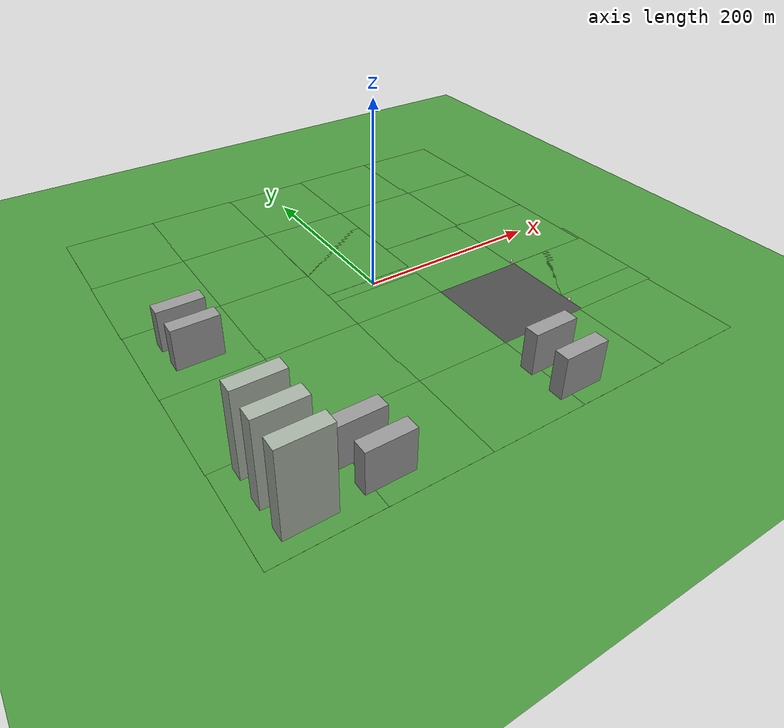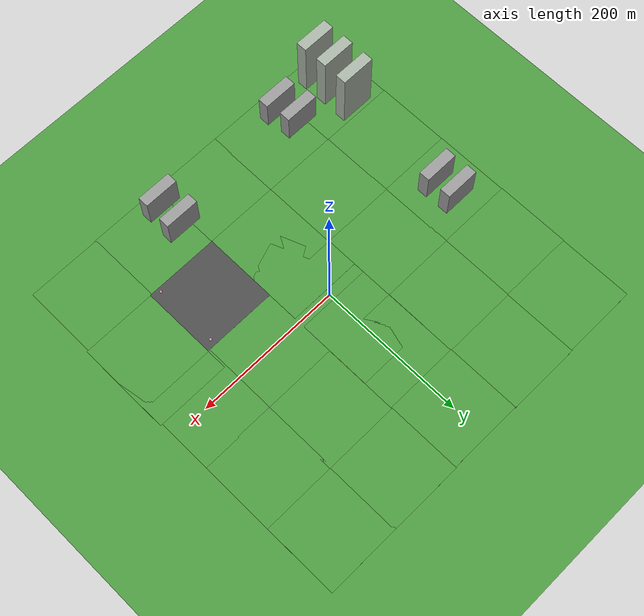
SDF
<sdf version="1.6">
 <world name="default">
  <light name="sun" type="directional">
   <pose>0 0 10 0 -0 0</pose>
   <diffuse>0.8 0.8 0.8 1</diffuse>
   <specular>0.2 0.2 0.2 1</specular>
   <attenuation>
    <range>1000</range>
    <constant>0.9</constant>
    <linear>0.01</linear>
    <quadratic>0.001</quadratic>
   </attenuation>
   <direction>-0.5 0.1 -0.9</direction>
  </light>
  <gravity>0 0 -9.8</gravity>
  <magnetic_field>6e-06 2.3e-05 -4.2e-05</magnetic_field>
  <atmosphere type="adiabatic"/>
  <physics name="default_physics" default="0" type="ode">
   <max_step_size>0.001</max_step_size>
   <real_time_factor>1</real_time_factor>
   <real_time_update_rate>1000</real_time_update_rate>
  </physics>
  <scene><ambient>0.4 0.4 0.4 1</ambient><background>0.7 0.7 0.7 1</background><shadows>1</shadows></scene>
  <spherical_coordinates>
   <surface_model>EARTH_WGS84</surface_model>
   <latitude_deg>0</latitude_deg>
   <longitude_deg>0</longitude_deg>
   <elevation>0</elevation>
   <heading_deg>0</heading_deg>
  </spherical_coordinates>
  <model name="ground_plane_0">
   <static>1</static>
   <link name="link">
    <collision name="collision">
     <geometry><plane><normal>0 0 1</normal><size>100 100</size></plane></geometry>
     <surface>
      <contact><collide_bitmask>65535</collide_bitmask></contact>
      <friction><ode><mu>100</mu><mu2>50</mu2></ode></friction>
     </surface>
    </collision>
    <visual name="visual">
     <cast_shadows>0</cast_shadows>
     <geometry><plane><normal>0 0 1</normal><size>100 100</size></plane></geometry>
     <material>
      <script><uri>file://media/materials/scripts/gazebo.material</uri><name>Gazebo/Grass</name></script>
     </material>
    </visual>
   </link>
   <pose>99.6791 0.203178 0 0 -0 0</pose>
  </model>
  <model name="ground_plane_1">
   <static>1</static>
   <link name="link">
    <collision name="collision">
     <geometry><plane><normal>0 0 1</normal><size>100 100</size></plane></geometry>
     <surface>
      <contact><collide_bitmask>65535</collide_bitmask></contact>
      <friction><ode><mu>100</mu><mu2>50</mu2></ode></friction>
     </surface>
    </collision>
    <visual name="visual">
     <cast_shadows>0</cast_shadows>
     <geometry><plane><normal>0 0 1</normal><size>100 100</size></plane></geometry>
     <material>
      <script><uri>file://media/materials/scripts/gazebo.material</uri><name>Gazebo/Grass</name></script>
     </material>
    </visual>
   </link>
   <pose>-0.061264 -99.9108 0 0 -0 0</pose>
  </model>
  <model name="ground_plane_3">
   <static>1</static>
   <link name="link">
    <collision name="collision">
     <geometry><plane><normal>0 0 1</normal><size>100 100</size></plane></geometry>
     <surface>
      <contact><collide_bitmask>65535</collide_bitmask></contact>
      <friction><ode><mu>100</mu><mu2>50</mu2></ode></friction>
     </surface>
    </collision>
    <visual name="visual">
     <cast_shadows>0</cast_shadows>
     <geometry><plane><normal>0 0 1</normal><size>100 100</size></plane></geometry>
     <material>
      <script><uri>file://media/materials/scripts/gazebo.material</uri><name>Gazebo/Grass</name></script>
     </material>
    </visual>
   </link>
   <pose>-98.8762 -99.6909 0 0 -0 0</pose>
  </model>
  <model name="ground_plane_4">
   <static>1</static>
   <link name="link">
    <collision name="collision">
     <geometry><plane><normal>0 0 1</normal><size>100 100</size></plane></geometry>
     <surface>
      <contact><collide_bitmask>65535</collide_bitmask></contact>
      <friction><ode><mu>100</mu><mu2>50</mu2></ode></friction>
     </surface>
    </collision>
    <visual name="visual">
     <cast_shadows>0</cast_shadows>
     <geometry><plane><normal>0 0 1</normal><size>100 100</size></plane></geometry>
     <material>
      <script><uri>file://media/materials/scripts/gazebo.material</uri><name>Gazebo/Grass</name></script>
     </material>
    </visual>
   </link>
   <pose>-99.6799 -0.052707 0 0 -0 0</pose>
  </model>
  <model name="ground_plane_5">
   <static>1</static>
   <link name="link">
    <collision name="collision">
     <geometry><plane><normal>0 0 1</normal><size>100 100</size></plane></geometry>
     <surface>
      <contact><collide_bitmask>65535</collide_bitmask></contact>
      <friction><ode><mu>100</mu><mu2>50</mu2></ode></friction>
     </surface>
    </collision>
    <visual name="visual">
     <cast_shadows>0</cast_shadows>
     <geometry><plane><normal>0 0 1</normal><size>100 100</size></plane></geometry>
     <material>
      <script><uri>file://media/materials/scripts/gazebo.material</uri><name>Gazebo/Grass</name></script>
     </material>
    </visual>
   </link>
   <pose>-99.3189 99.7356 0 0 -0 0</pose>
  </model>
  <model name="ground_plane_6">
   <static>1</static>
   <link name="link">
    <collision name="collision">
     <geometry><plane><normal>0 0 1</normal><size>100 100</size></plane></geometry>
     <surface>
      <contact><collide_bitmask>65535</collide_bitmask></contact>
      <friction><ode><mu>100</mu><mu2>50</mu2></ode></friction>
     </surface>
    </collision>
    <visual name="visual">
     <cast_shadows>0</cast_shadows>
     <geometry><plane><normal>0 0 1</normal><size>100 100</size></plane></geometry>
     <material>
      <script><uri>file://media/materials/scripts/gazebo.material</uri><name>Gazebo/Grass</name></script>
     </material>
    </visual>
   </link>
   <pose>0.227483 99.6639 0 0 -0 0</pose>
  </model>
  <model name="ground_plane_7">
   <static>1</static>
   <link name="link">
    <collision name="collision">
     <geometry><plane><normal>0 0 1</normal><size>100 100</size></plane></geometry>
     <surface>
      <contact><collide_bitmask>65535</collide_bitmask></contact>
      <friction><ode><mu>100</mu><mu2>50</mu2></ode></friction>
     </surface>
    </collision>
    <visual name="visual">
     <cast_shadows>0</cast_shadows>
     <geometry><plane><normal>0 0 1</normal><size>100 100</size></plane></geometry>
     <material>
      <script><uri>file://media/materials/scripts/gazebo.material</uri><name>Gazebo/Grass</name></script>
     </material>
    </visual>
   </link>
   <pose>100.101 100.043 0 0 -0 0</pose>
  </model>
  <model name="ground_plane">
   <static>1</static>
   <link name="link">
    <collision name="collision">
     <geometry><plane><normal>0 0 1</normal><size>100 100</size></plane></geometry>
     <surface>
      <contact><collide_bitmask>65535</collide_bitmask></contact>
      <friction><ode><mu>100</mu><mu2>50</mu2></ode></friction>
     </surface>
    </collision>
    <visual name="visual">
     <cast_shadows>0</cast_shadows>
     <geometry><plane><normal>0 0 1</normal><size>15 100</size></plane></geometry>
     <material>
      <script><uri>file://media/materials/scripts/gazebo.material</uri><name>Gazebo/Road</name></script>
     </material>
    </visual>
   </link>
   <pose>0 0 0 0 0 -1.57637</pose>
  </model>
  <model name="ground_plane_8">
   <static>1</static>
   <link name="link">
    <collision name="collision">
     <geometry><plane><normal>0 0 1</normal><size>100 100</size></plane></geometry>
     <surface>
      <contact><collide_bitmask>65535</collide_bitmask></contact>
      <friction><ode><mu>100</mu><mu2>50</mu2></ode></friction>
     </surface>
    </collision>
    <visual name="visual">
     <cast_shadows>0</cast_shadows>
     <geometry><plane><normal>0 0 1</normal><size>100 100</size></plane></geometry>
     <material>
      <script><uri>file://media/materials/scripts/gazebo.material</uri><name>Gazebo/Grass</name></script>
     </material>
    </visual>
   </link>
   <pose>0.044486 -57.1494 0 0 -0 0</pose>
  </model>
  <model name="ground_plane_9">
   <static>1</static>
   <link name="link">
    <collision name="collision">
     <geometry><plane><normal>0 0 1</normal><size>100 100</size></plane></geometry>
     <surface>
      <contact><collide_bitmask>65535</collide_bitmask></contact>
      <friction><ode><mu>100</mu><mu2>50</mu2></ode></friction>
     </surface>
    </collision>
    <visual name="visual">
     <cast_shadows>0</cast_shadows>
     <geometry><plane><normal>0 0 1</normal><size>100 100</size></plane></geometry>
     <material>
      <script><uri>file://media/materials/scripts/gazebo.material</uri><name>Gazebo/Grass</name></script>
     </material>
    </visual>
   </link>
   <pose>-0.105901 57.3308 0 0 -0 0</pose>
  </model>
  <model name="ground_plane_10">
   <static>1</static>
   <link name="link">
    <collision name="collision">
     <geometry><plane><normal>0 0 1</normal><size>100 100</size></plane></geometry>
     <surface>
      <contact><collide_bitmask>65535</collide_bitmask></contact>
      <friction><ode><mu>100</mu><mu2>50</mu2></ode></friction>
     </surface>
    </collision>
    <visual name="visual">
     <cast_shadows>0</cast_shadows>
     <geometry><plane><normal>0 0 1</normal><size>100 100</size></plane></geometry>
     <material>
      <script><uri>file://media/materials/scripts/gazebo.material</uri><name>Gazebo/Grass</name></script>
     </material>
    </visual>
   </link>
   <pose>-99.459 199.72 0 0 -0 0</pose>
  </model>
  <model name="ground_plane_11">
   <static>1</static>
   <link name="link">
    <collision name="collision">
     <geometry><plane><normal>0 0 1</normal><size>100 100</size></plane></geometry>
     <surface>
      <contact><collide_bitmask>65535</collide_bitmask></contact>
      <friction><ode><mu>100</mu><mu2>50</mu2></ode></friction>
     </surface>
    </collision>
    <visual name="visual">
     <cast_shadows>0</cast_shadows>
     <geometry><plane><normal>0 0 1</normal><size>100 100</size></plane></geometry>
     <material>
      <script><uri>file://media/materials/scripts/gazebo.material</uri><name>Gazebo/Grass</name></script>
     </material>
    </visual>
   </link>
   <pose>-199.25 99.2555 0 0 -0 0</pose>
  </model>
  <model name="ground_plane_12">
   <static>1</static>
   <link name="link">
    <collision name="collision">
     <geometry><plane><normal>0 0 1</normal><size>100 100</size></plane></geometry>
     <surface>
      <contact><collide_bitmask>65535</collide_bitmask></contact>
      <friction><ode><mu>100</mu><mu2>50</mu2></ode></friction>
     </surface>
    </collision>
    <visual name="visual">
     <cast_shadows>0</cast_shadows>
     <geometry><plane><normal>0 0 1</normal><size>100 100</size></plane></geometry>
     <material>
      <script><uri>file://media/materials/scripts/gazebo.material</uri><name>Gazebo/Grass</name></script>
     </material>
    </visual>
   </link>
   <pose>-198.694 198.835 0 0 -0 0</pose>
  </model>
  <model name="ground_plane_13">
   <static>1</static>
   <link name="link">
    <collision name="collision">
     <geometry><plane><normal>0 0 1</normal><size>100 100</size></plane></geometry>
     <surface>
      <contact><collide_bitmask>65535</collide_bitmask></contact>
      <friction><ode><mu>100</mu><mu2>50</mu2></ode></friction>
     </surface>
    </collision>
    <visual name="visual">
     <cast_shadows>0</cast_shadows>
     <geometry><plane><normal>0 0 1</normal><size>100 100</size></plane></geometry>
     <material>
      <script><uri>file://media/materials/scripts/gazebo.material</uri><name>Gazebo/Grass</name></script>
     </material>
    </visual>
   </link>
   <pose>-198.64 -0.563791 0 0 -0 0</pose>
  </model>
  <model name="ground_plane_15">
   <static>1</static>
   <link name="link">
    <collision name="collision">
     <geometry><plane><normal>0 0 1</normal><size>100 100</size></plane></geometry>
     <surface>
      <contact><collide_bitmask>65535</collide_bitmask></contact>
      <friction><ode><mu>100</mu><mu2>50</mu2></ode></friction>
     </surface>
    </collision>
    <visual name="visual">
     <cast_shadows>0</cast_shadows>
     <geometry><plane><normal>0 0 1</normal><size>100 100</size></plane></geometry>
     <material>
      <script><uri>file://media/materials/scripts/gazebo.material</uri><name>Gazebo/Grass</name></script>
     </material>
    </visual>
   </link>
   <pose>99.2331 199.94 0 0 -0 0</pose>
  </model>
  <model name="ground_plane_16">
   <static>1</static>
   <link name="link">
    <collision name="collision">
     <geometry><plane><normal>0 0 1</normal><size>100 100</size></plane></geometry>
     <surface>
      <contact><collide_bitmask>65535</collide_bitmask></contact>
      <friction><ode><mu>100</mu><mu2>50</mu2></ode></friction>
     </surface>
    </collision>
    <visual name="visual">
     <cast_shadows>0</cast_shadows>
     <geometry><plane><normal>0 0 1</normal><size>100 100</size></plane></geometry>
     <material>
      <script><uri>file://media/materials/scripts/gazebo.material</uri><name>Gazebo/Grass</name></script>
     </material>
    </visual>
   </link>
   <pose>197.197 199.742 0 0 -0 0</pose>
  </model>
  <model name="ground_plane_17">
   <static>1</static>
   <link name="link">
    <collision name="collision">
     <geometry><plane><normal>0 0 1</normal><size>100 100</size></plane></geometry>
     <surface>
      <contact><collide_bitmask>65535</collide_bitmask></contact>
      <friction><ode><mu>100</mu><mu2>50</mu2></ode></friction>
     </surface>
    </collision>
    <visual name="visual">
     <cast_shadows>0</cast_shadows>
     <geometry><plane><normal>0 0 1</normal><size>100 100</size></plane></geometry>
     <material>
      <script><uri>file://media/materials/scripts/gazebo.material</uri><name>Gazebo/Grass</name></script>
     </material>
    </visual>
   </link>
   <pose>197.281 99.79 0 0 -0 0</pose>
  </model>
  <model name="ground_plane_18">
   <static>1</static>
   <link name="link">
    <collision name="collision">
     <geometry><plane><normal>0 0 1</normal><size>100 100</size></plane></geometry>
     <surface>
      <contact><collide_bitmask>65535</collide_bitmask></contact>
      <friction><ode><mu>100</mu><mu2>50</mu2></ode></friction>
     </surface>
    </collision>
    <visual name="visual">
     <cast_shadows>0</cast_shadows>
     <geometry><plane><normal>0 0 1</normal><size>100 100</size></plane></geometry>
     <material>
      <script><uri>file://media/materials/scripts/gazebo.material</uri><name>Gazebo/Grass</name></script>
     </material>
    </visual>
   </link>
   <pose>197.15 1.20188 0 0 -0 0</pose>
  </model>
  <model name="ground_plane_20">
   <static>1</static>
   <link name="link">
    <collision name="collision">
     <geometry><plane><normal>0 0 1</normal><size>100 100</size></plane></geometry>
     <surface>
      <contact><collide_bitmask>65535</collide_bitmask></contact>
      <friction><ode><mu>100</mu><mu2>50</mu2></ode></friction>
     </surface>
    </collision>
    <visual name="visual">
     <cast_shadows>0</cast_shadows>
     <geometry><plane><normal>0 0 1</normal><size>100 100</size></plane></geometry>
     <material>
      <script><uri>file://media/materials/scripts/gazebo.material</uri><name>Gazebo/Grass</name></script>
     </material>
    </visual>
   </link>
   <pose>-198.251 -100.352 0 0 -0 0</pose>
  </model>
  <model name="ground_plane_21">
   <static>1</static>
   <link name="link">
    <collision name="collision">
     <geometry><plane><normal>0 0 1</normal><size>100 100</size></plane></geometry>
     <surface>
      <contact><collide_bitmask>65535</collide_bitmask></contact>
      <friction><ode><mu>100</mu><mu2>50</mu2></ode></friction>
     </surface>
    </collision>
    <visual name="visual">
     <cast_shadows>0</cast_shadows>
     <geometry><plane><normal>0 0 1</normal><size>100 100</size></plane></geometry>
     <material>
      <script><uri>file://media/materials/scripts/gazebo.material</uri><name>Gazebo/Grass</name></script>
     </material>
    </visual>
   </link>
   <pose>-197.651 -199.518 0 0 -0 0</pose>
  </model>
  <model name="ground_plane_22">
   <static>1</static>
   <link name="link">
    <collision name="collision">
     <geometry><plane><normal>0 0 1</normal><size>100 100</size></plane></geometry>
     <surface>
      <contact><collide_bitmask>65535</collide_bitmask></contact>
      <friction><ode><mu>100</mu><mu2>50</mu2></ode></friction>
     </surface>
    </collision>
    <visual name="visual">
     <cast_shadows>0</cast_shadows>
     <geometry><plane><normal>0 0 1</normal><size>100 100</size></plane></geometry>
     <material>
      <script><uri>file://media/materials/scripts/gazebo.material</uri><name>Gazebo/Grass</name></script>
     </material>
    </visual>
   </link>
   <pose>-98.6366 -199.632 0 0 -0 0</pose>
  </model>
  <model name="ground_plane_23">
   <static>1</static>
   <link name="link">
    <collision name="collision">
     <geometry><plane><normal>0 0 1</normal><size>100 100</size></plane></geometry>
     <surface>
      <contact><collide_bitmask>65535</collide_bitmask></contact>
      <friction><ode><mu>100</mu><mu2>50</mu2></ode></friction>
     </surface>
    </collision>
    <visual name="visual">
     <cast_shadows>0</cast_shadows>
     <geometry><plane><normal>0 0 1</normal><size>100 100</size></plane></geometry>
     <material>
      <script><uri>file://media/materials/scripts/gazebo.material</uri><name>Gazebo/Grass</name></script>
     </material>
    </visual>
   </link>
   <pose>0.402078 -199.764 0 0 -0 0</pose>
  </model>
  <model name="ground_plane_24">
   <static>1</static>
   <link name="link">
    <collision name="collision">
     <geometry><plane><normal>0 0 1</normal><size>100 100</size></plane></geometry>
     <surface>
      <contact><collide_bitmask>65535</collide_bitmask></contact>
      <friction><ode><mu>100</mu><mu2>50</mu2></ode></friction>
     </surface>
    </collision>
    <visual name="visual">
     <cast_shadows>0</cast_shadows>
     <geometry><plane><normal>0 0 1</normal><size>100 100</size></plane></geometry>
     <material>
      <script><uri>file://media/materials/scripts/gazebo.material</uri><name>Gazebo/Grass</name></script>
     </material>
    </visual>
   </link>
   <pose>100.227 -199.618 0 0 -0 0</pose>
  </model>
  <model name="ground_plane_25">
   <static>1</static>
   <link name="link">
    <collision name="collision">
     <geometry><plane><normal>0 0 1</normal><size>100 100</size></plane></geometry>
     <surface>
      <contact><collide_bitmask>65535</collide_bitmask></contact>
      <friction><ode><mu>100</mu><mu2>50</mu2></ode></friction>
     </surface>
    </collision>
    <visual name="visual">
     <cast_shadows>0</cast_shadows>
     <geometry><plane><normal>0 0 1</normal><size>100 100</size></plane></geometry>
     <material>
      <script><uri>file://media/materials/scripts/gazebo.material</uri><name>Gazebo/Grass</name></script>
     </material>
    </visual>
   </link>
   <pose>197.379 -198.73 0 0 -0 0</pose>
  </model>
  <model name="ground_plane_14">
   <static>1</static>
   <link name="link">
    <collision name="collision">
     <geometry><plane><normal>0 0 1</normal><size>100 100</size></plane></geometry>
     <surface>
      <contact><collide_bitmask>65535</collide_bitmask></contact>
      <friction><ode><mu>100</mu><mu2>50</mu2></ode></friction>
     </surface>
    </collision>
    <visual name="visual">
     <cast_shadows>0</cast_shadows>
     <geometry><plane><normal>0 0 1</normal><size>100 100</size></plane></geometry>
     <material>
      <script><uri>file://media/materials/scripts/gazebo.material</uri><name>Gazebo/Grass</name></script>
     </material>
    </visual>
   </link>
   <pose>-0.762713 198.877 0 0 -0 0</pose>
  </model>
  <model name="building_1_3">
   <link name="link">
    <inertial>
     <mass>60357.9</mass>
     <inertia>
      <ixx>4.03331e+07</ixx>
      <ixy>0</ixy>
      <ixz>0</ixz>
      <iyy>5.02638e+07</iyy>
      <iyz>0</iyz>
      <izz>1.20769e+07</izz>
     </inertia>
    </inertial>
    <pose>-0.769614 -28.5431 41.0373 0 -0 0</pose>
    <visual name="visual">
     <geometry><box><size>46.773 14.6063 88.3484</size></box></geometry>
     <material>
      <script><name>Gazebo/Grey</name><uri>file://media/materials/scripts/gazebo.material</uri></script>
      <shader type="pixel"><normal_map>__default__</normal_map></shader>
      <ambient>0.424 0.392 0.384 0</ambient>
      <diffuse>0.655 0.698 0.643 1</diffuse>
      <specular>0.01 0.01 0.01 1</specular>
      <emissive>0 0 0 1</emissive>
     </material>
     <transparency>0.1</transparency>
    </visual>
    <collision name="collision">
     <geometry><box><size>46.773 14.6063 88.3484</size></box></geometry>
     <surface>
      <friction>
       <ode><mu>1</mu><mu2>1</mu2><fdir1>0 0 0</fdir1><slip1>0</slip1><slip2>0</slip2></ode>
       <torsional>
        <coefficient>1</coefficient>
        <patch_radius>0</patch_radius>
        <surface_radius>0</surface_radius>
        <use_patch_radius>1</use_patch_radius>
        <ode><slip>0</slip></ode>
       </torsional>
      </friction>
      <bounce><restitution_coefficient>0</restitution_coefficient><threshold>1e+06</threshold></bounce>
      <contact>
       <collide_without_contact>0</collide_without_contact>
       <collide_without_contact_bitmask>1</collide_without_contact_bitmask>
       <collide_bitmask>1</collide_bitmask>
       <ode>
        <soft_cfm>0</soft_cfm>
        <soft_erp>0.2</soft_erp>
        <kp>1e+13</kp>
        <kd>1</kd>
        <max_vel>0.01</max_vel>
        <min_depth>0</min_depth>
       </ode>
       <bullet>
        <split_impulse>1</split_impulse>
        <split_impulse_penetration_threshold>-0.01</split_impulse_penetration_threshold>
        <soft_cfm>0</soft_cfm>
        <soft_erp>0.2</soft_erp>
        <kp>1e+13</kp>
        <kd>1</kd>
       </bullet>
      </contact>
     </surface>
    </collision>
   </link>
   <static>0</static>
   <pose>-202.592 -198.579 3.1369 0 -0 0</pose>
  </model>
  <model name="building_1_4">
   <link name="link">
    <inertial>
     <mass>60357.9</mass>
     <inertia>
      <ixx>4.03331e+07</ixx>
      <ixy>0</ixy>
      <ixz>0</ixz>
      <iyy>5.02638e+07</iyy>
      <iyz>0</iyz>
      <izz>1.20769e+07</izz>
     </inertia>
    </inertial>
    <pose>-0.769614 -28.5431 41.0373 0 -0 0</pose>
    <visual name="visual">
     <geometry><box><size>46.773 14.6063 88.3484</size></box></geometry>
     <material>
      <script><name>Gazebo/Grey</name><uri>file://media/materials/scripts/gazebo.material</uri></script>
      <shader type="pixel"><normal_map>__default__</normal_map></shader>
      <ambient>0.424 0.392 0.384 0</ambient>
      <diffuse>0.655 0.698 0.643 1</diffuse>
      <specular>0.01 0.01 0.01 1</specular>
      <emissive>0 0 0 1</emissive>
     </material>
     <transparency>0.1</transparency>
    </visual>
    <collision name="collision">
     <geometry><box><size>46.773 14.6063 88.3484</size></box></geometry>
     <surface>
      <friction>
       <ode><mu>1</mu><mu2>1</mu2><fdir1>0 0 0</fdir1><slip1>0</slip1><slip2>0</slip2></ode>
       <torsional>
        <coefficient>1</coefficient>
        <patch_radius>0</patch_radius>
        <surface_radius>0</surface_radius>
        <use_patch_radius>1</use_patch_radius>
        <ode><slip>0</slip></ode>
       </torsional>
      </friction>
      <bounce><restitution_coefficient>0</restitution_coefficient><threshold>1e+06</threshold></bounce>
      <contact>
       <collide_without_contact>0</collide_without_contact>
       <collide_without_contact_bitmask>1</collide_without_contact_bitmask>
       <collide_bitmask>1</collide_bitmask>
       <ode>
        <soft_cfm>0</soft_cfm>
        <soft_erp>0.2</soft_erp>
        <kp>1e+13</kp>
        <kd>1</kd>
        <max_vel>0.01</max_vel>
        <min_depth>0</min_depth>
       </ode>
       <bullet>
        <split_impulse>1</split_impulse>
        <split_impulse_penetration_threshold>-0.01</split_impulse_penetration_threshold>
        <soft_cfm>0</soft_cfm>
        <soft_erp>0.2</soft_erp>
        <kp>1e+13</kp>
        <kd>1</kd>
       </bullet>
      </contact>
     </surface>
    </collision>
   </link>
   <static>0</static>
   <pose>-203.583 -166.249 3.1369 0 -0 0</pose>
  </model>
  <model name="building_1_5">
   <link name="link">
    <inertial>
     <mass>60357.9</mass>
     <inertia>
      <ixx>4.03331e+07</ixx>
      <ixy>0</ixy>
      <ixz>0</ixz>
      <iyy>5.02638e+07</iyy>
      <iyz>0</iyz>
      <izz>1.20769e+07</izz>
     </inertia>
    </inertial>
    <pose>-0.769614 -28.5431 41.0373 0 -0 0</pose>
    <visual name="visual">
     <geometry><box><size>46.773 14.6063 88.3484</size></box></geometry>
     <material>
      <script><name>Gazebo/Grey</name><uri>file://media/materials/scripts/gazebo.material</uri></script>
      <shader type="pixel"><normal_map>__default__</normal_map></shader>
      <ambient>0.424 0.392 0.384 0</ambient>
      <diffuse>0.655 0.698 0.643 1</diffuse>
      <specular>0.01 0.01 0.01 1</specular>
      <emissive>0 0 0 1</emissive>
     </material>
     <transparency>0.1</transparency>
    </visual>
    <collision name="collision">
     <geometry><box><size>46.773 14.6063 88.3484</size></box></geometry>
     <surface>
      <friction>
       <ode><mu>1</mu><mu2>1</mu2><fdir1>0 0 0</fdir1><slip1>0</slip1><slip2>0</slip2></ode>
       <torsional>
        <coefficient>1</coefficient>
        <patch_radius>0</patch_radius>
        <surface_radius>0</surface_radius>
        <use_patch_radius>1</use_patch_radius>
        <ode><slip>0</slip></ode>
       </torsional>
      </friction>
      <bounce><restitution_coefficient>0</restitution_coefficient><threshold>1e+06</threshold></bounce>
      <contact>
       <collide_without_contact>0</collide_without_contact>
       <collide_without_contact_bitmask>1</collide_without_contact_bitmask>
       <collide_bitmask>1</collide_bitmask>
       <ode>
        <soft_cfm>0</soft_cfm>
        <soft_erp>0.2</soft_erp>
        <kp>1e+13</kp>
        <kd>1</kd>
        <max_vel>0.01</max_vel>
        <min_depth>0</min_depth>
       </ode>
       <bullet>
        <split_impulse>1</split_impulse>
        <split_impulse_penetration_threshold>-0.01</split_impulse_penetration_threshold>
        <soft_cfm>0</soft_cfm>
        <soft_erp>0.2</soft_erp>
        <kp>1e+13</kp>
        <kd>1</kd>
       </bullet>
      </contact>
     </surface>
    </collision>
   </link>
   <static>0</static>
   <pose>-203.489 -132.859 3.1369 0 -0 0</pose>
  </model>
  <model name="building_5">
   <link name="link">
    <inertial>
     <mass>29811.9</mass>
     <inertia>
      <ixx>5.26063e+06</ixx>
      <ixy>0</ixy>
      <ixz>0</ixz>
      <iyy>1.01656e+07</iyy>
      <iyz>0</iyz>
      <izz>5.96502e+06</izz>
     </inertia>
    </inertial>
    <pose>-3.01097 9.40511 20.8174 0 -0 0</pose>
    <visual name="visual">
     <geometry><box><size>46.773 14.6063 43.6369</size></box></geometry>
     <material>
      <script><name>Gazebo/Grey</name><uri>file://media/materials/scripts/gazebo.material</uri></script>
      <shader type="pixel"><normal_map>__default__</normal_map></shader>
      <ambient>0.424 0.392 0.384 0</ambient>
      <diffuse>0.7 0.7 0.7 1</diffuse>
      <specular>0.01 0.01 0.01 1</specular>
      <emissive>0 0 0 1</emissive>
     </material>
    </visual>
    <collision name="collision">
     <geometry><box><size>46.773 14.6063 43.6369</size></box></geometry>
     <surface>
      <friction>
       <ode><mu>1</mu><mu2>1</mu2><fdir1>0 0 0</fdir1><slip1>0</slip1><slip2>0</slip2></ode>
       <torsional>
        <coefficient>1</coefficient>
        <patch_radius>0</patch_radius>
        <surface_radius>0</surface_radius>
        <use_patch_radius>1</use_patch_radius>
        <ode><slip>0</slip></ode>
       </torsional>
      </friction>
      <bounce><restitution_coefficient>0</restitution_coefficient><threshold>1e+06</threshold></bounce>
      <contact>
       <collide_without_contact>0</collide_without_contact>
       <collide_without_contact_bitmask>1</collide_without_contact_bitmask>
       <collide_bitmask>1</collide_bitmask>
       <ode>
        <soft_cfm>0</soft_cfm>
        <soft_erp>0.2</soft_erp>
        <kp>1e+13</kp>
        <kd>1</kd>
        <max_vel>0.01</max_vel>
        <min_depth>0</min_depth>
       </ode>
       <bullet>
        <split_impulse>1</split_impulse>
        <split_impulse_penetration_threshold>-0.01</split_impulse_penetration_threshold>
        <soft_cfm>0</soft_cfm>
        <soft_erp>0.2</soft_erp>
        <kp>1e+13</kp>
        <kd>1</kd>
       </bullet>
      </contact>
     </surface>
    </collision>
   </link>
   <static>0</static>
   <pose>-130.337 -233.49 1.00105 0 -0 3e-06</pose>
  </model>
  <model name="building_6">
   <link name="link">
    <inertial>
     <mass>29811.9</mass>
     <inertia>
      <ixx>5.26063e+06</ixx>
      <ixy>0</ixy>
      <ixz>0</ixz>
      <iyy>1.01656e+07</iyy>
      <iyz>0</iyz>
      <izz>5.96502e+06</izz>
     </inertia>
    </inertial>
    <pose>-3.01097 9.40511 20.8174 0 -0 0</pose>
    <visual name="visual">
     <geometry><box><size>46.773 14.6063 43.6369</size></box></geometry>
     <material>
      <script><name>Gazebo/Grey</name><uri>file://media/materials/scripts/gazebo.material</uri></script>
      <shader type="pixel"><normal_map>__default__</normal_map></shader>
      <ambient>0.424 0.392 0.384 0</ambient>
      <diffuse>0.7 0.7 0.7 1</diffuse>
      <specular>0.01 0.01 0.01 1</specular>
      <emissive>0 0 0 1</emissive>
     </material>
    </visual>
    <collision name="collision">
     <geometry><box><size>46.773 14.6063 43.6369</size></box></geometry>
     <surface>
      <friction>
       <ode><mu>1</mu><mu2>1</mu2><fdir1>0 0 0</fdir1><slip1>0</slip1><slip2>0</slip2></ode>
       <torsional>
        <coefficient>1</coefficient>
        <patch_radius>0</patch_radius>
        <surface_radius>0</surface_radius>
        <use_patch_radius>1</use_patch_radius>
        <ode><slip>0</slip></ode>
       </torsional>
      </friction>
      <bounce><restitution_coefficient>0</restitution_coefficient><threshold>1e+06</threshold></bounce>
      <contact>
       <collide_without_contact>0</collide_without_contact>
       <collide_without_contact_bitmask>1</collide_without_contact_bitmask>
       <collide_bitmask>1</collide_bitmask>
       <ode>
        <soft_cfm>0</soft_cfm>
        <soft_erp>0.2</soft_erp>
        <kp>1e+13</kp>
        <kd>1</kd>
        <max_vel>0.01</max_vel>
        <min_depth>0</min_depth>
       </ode>
       <bullet>
        <split_impulse>1</split_impulse>
        <split_impulse_penetration_threshold>-0.01</split_impulse_penetration_threshold>
        <soft_cfm>0</soft_cfm>
        <soft_erp>0.2</soft_erp>
        <kp>1e+13</kp>
        <kd>1</kd>
       </bullet>
      </contact>
     </surface>
    </collision>
   </link>
   <static>0</static>
   <pose>-135.461 -201.387 1.00104 -0 -0 -1.7e-05</pose>
  </model>
  <model name="target2">
   <link name="link">
    <inertial>
     <mass>4.2221</mass>
     <inertia><ixx>1.10294</ixx><ixy>0</ixy><ixz>0</ixz><iyy>1.10294</iyy><iyz>0</iyz><izz>1.10294</izz></inertia>
    </inertial>
    <gravity>0</gravity>
    <visual name="visual">
     <geometry><sphere><radius>1.61637</radius></sphere></geometry>
     <material>
      <script><name>Gazebo/Grey</name><uri>file://media/materials/scripts/gazebo.material</uri></script>
      <shader type="pixel"><normal_map>__default__</normal_map></shader>
      <ambient>0.1 0.3 0.9 1</ambient>
      <diffuse>1 0.7 0.9 1</diffuse>
      <specular>0.008 0 0 1</specular>
      <emissive>0 0 0 1</emissive>
     </material>
     <transparency>0.1</transparency>
    </visual>
   </link>
   <static>0</static>
   <pose>140 -140 10 0 -0 0</pose>
  </model>
  <model name="target2_0">
   <link name="link">
    <inertial>
     <mass>4.2221</mass>
     <inertia><ixx>1.10294</ixx><ixy>0</ixy><ixz>0</ixz><iyy>1.10294</iyy><iyz>0</iyz><izz>1.10294</izz></inertia>
    </inertial>
    <gravity>0</gravity>
    <visual name="visual">
     <geometry><sphere><radius>1.61637</radius></sphere></geometry>
     <material>
      <script><name>Gazebo/Grey</name><uri>file://media/materials/scripts/gazebo.material</uri></script>
      <shader type="pixel"><normal_map>__default__</normal_map></shader>
      <ambient>0.1 0.3 0.9 1</ambient>
      <diffuse>1 0.7 0.9 1</diffuse>
      <specular>0.008 0 0 1</specular>
      <emissive>0 0 0 1</emissive>
     </material>
     <transparency>0.1</transparency>
    </visual>
   </link>
   <static>0</static>
   <pose>140 -55 10 0 -0 0</pose>
  </model>
  <model name="building_7">
   <link name="link">
    <inertial>
     <mass>29811.9</mass>
     <inertia>
      <ixx>5.26063e+06</ixx>
      <ixy>0</ixy>
      <ixz>0</ixz>
      <iyy>1.01656e+07</iyy>
      <iyz>0</iyz>
      <izz>5.96502e+06</izz>
     </inertia>
    </inertial>
    <pose>-3.01097 9.40511 20.8174 0 -0 0</pose>
    <visual name="visual">
     <geometry><box><size>46.773 14.6063 43.6369</size></box></geometry>
     <material>
      <script><name>Gazebo/Grey</name><uri>file://media/materials/scripts/gazebo.material</uri></script>
      <shader type="pixel"><normal_map>__default__</normal_map></shader>
      <ambient>0.424 0.392 0.384 0</ambient>
      <diffuse>0.7 0.7 0.7 1</diffuse>
      <specular>0.01 0.01 0.01 1</specular>
      <emissive>0 0 0 1</emissive>
     </material>
    </visual>
    <collision name="collision">
     <geometry><box><size>46.773 14.6063 43.6369</size></box></geometry>
     <surface>
      <friction>
       <ode><mu>1</mu><mu2>1</mu2><fdir1>0 0 0</fdir1><slip1>0</slip1><slip2>0</slip2></ode>
       <torsional>
        <coefficient>1</coefficient>
        <patch_radius>0</patch_radius>
        <surface_radius>0</surface_radius>
        <use_patch_radius>1</use_patch_radius>
        <ode><slip>0</slip></ode>
       </torsional>
      </friction>
      <bounce><restitution_coefficient>0</restitution_coefficient><threshold>1e+06</threshold></bounce>
      <contact>
       <collide_without_contact>0</collide_without_contact>
       <collide_without_contact_bitmask>1</collide_without_contact_bitmask>
       <collide_bitmask>1</collide_bitmask>
       <ode>
        <soft_cfm>0</soft_cfm>
        <soft_erp>0.2</soft_erp>
        <kp>1e+13</kp>
        <kd>1</kd>
        <max_vel>0.01</max_vel>
        <min_depth>0</min_depth>
       </ode>
       <bullet>
        <split_impulse>1</split_impulse>
        <split_impulse_penetration_threshold>-0.01</split_impulse_penetration_threshold>
        <soft_cfm>0</soft_cfm>
        <soft_erp>0.2</soft_erp>
        <kp>1e+13</kp>
        <kd>1</kd>
       </bullet>
      </contact>
     </surface>
    </collision>
   </link>
   <static>0</static>
   <pose>-196.683 8.23228 1.00104 0 0 -4e-06</pose>
  </model>
  <model name="building_8">
   <link name="link">
    <inertial>
     <mass>29811.9</mass>
     <inertia>
      <ixx>5.26063e+06</ixx>
      <ixy>0</ixy>
      <ixz>0</ixz>
      <iyy>1.01656e+07</iyy>
      <iyz>0</iyz>
      <izz>5.96502e+06</izz>
     </inertia>
    </inertial>
    <pose>-3.01097 9.40511 20.8174 0 -0 0</pose>
    <visual name="visual">
     <geometry><box><size>46.773 14.6063 43.6369</size></box></geometry>
     <material>
      <script><name>Gazebo/Grey</name><uri>file://media/materials/scripts/gazebo.material</uri></script>
      <shader type="pixel"><normal_map>__default__</normal_map></shader>
      <ambient>0.424 0.392 0.384 0</ambient>
      <diffuse>0.7 0.7 0.7 1</diffuse>
      <specular>0.01 0.01 0.01 1</specular>
      <emissive>0 0 0 1</emissive>
     </material>
    </visual>
    <collision name="collision">
     <geometry><box><size>46.773 14.6063 43.6369</size></box></geometry>
     <surface>
      <friction>
       <ode><mu>1</mu><mu2>1</mu2><fdir1>0 0 0</fdir1><slip1>0</slip1><slip2>0</slip2></ode>
       <torsional>
        <coefficient>1</coefficient>
        <patch_radius>0</patch_radius>
        <surface_radius>0</surface_radius>
        <use_patch_radius>1</use_patch_radius>
        <ode><slip>0</slip></ode>
       </torsional>
      </friction>
      <bounce><restitution_coefficient>0</restitution_coefficient><threshold>1e+06</threshold></bounce>
      <contact>
       <collide_without_contact>0</collide_without_contact>
       <collide_without_contact_bitmask>1</collide_without_contact_bitmask>
       <collide_bitmask>1</collide_bitmask>
       <ode>
        <soft_cfm>0</soft_cfm>
        <soft_erp>0.2</soft_erp>
        <kp>1e+13</kp>
        <kd>1</kd>
        <max_vel>0.01</max_vel>
        <min_depth>0</min_depth>
       </ode>
       <bullet>
        <split_impulse>1</split_impulse>
        <split_impulse_penetration_threshold>-0.01</split_impulse_penetration_threshold>
        <soft_cfm>0</soft_cfm>
        <soft_erp>0.2</soft_erp>
        <kp>1e+13</kp>
        <kd>1</kd>
       </bullet>
      </contact>
     </surface>
    </collision>
   </link>
   <static>0</static>
   <pose>-195.628 -24.6245 1.00104 0 0 -4e-06</pose>
  </model>
  <model name="ground_plane_2">
   <static>1</static>
   <link name="link">
    <collision name="collision">
     <geometry><plane><normal>0 0 1</normal><size>100 100</size></plane></geometry>
     <surface>
      <contact><collide_bitmask>65535</collide_bitmask></contact>
      <friction><ode><mu>100</mu><mu2>50</mu2></ode></friction>
     </surface>
    </collision>
    <visual name="visual">
     <cast_shadows>0</cast_shadows>
     <geometry><plane><normal>0 0 1</normal><size>100 100</size></plane></geometry>
     <material>
      <script><uri>file://media/materials/scripts/gazebo.material</uri><name>Gazebo/Road</name></script>
     </material>
    </visual>
   </link>
   <pose>99.8168 -99.771 0 0 -0 0</pose>
  </model>
  <model name="ground_plane_19">
   <static>1</static>
   <link name="link">
    <collision name="collision">
     <geometry><plane><normal>0 0 1</normal><size>100 100</size></plane></geometry>
     <surface>
      <contact><collide_bitmask>65535</collide_bitmask></contact>
      <friction><ode><mu>100</mu><mu2>50</mu2></ode></friction>
     </surface>
    </collision>
    <visual name="visual">
     <cast_shadows>0</cast_shadows>
     <geometry><plane><normal>0 0 1</normal><size>100 100</size></plane></geometry>
     <material>
      <script><uri>file://media/materials/scripts/gazebo.material</uri><name>Gazebo/Grass</name></script>
     </material>
    </visual>
   </link>
   <pose>199.659 -99.099 0 0 -0 0</pose>
  </model>
  <model name="ground_plane_26">
   <static>1</static>
   <link name="link">
    <collision name="collision">
     <geometry><plane><normal>0 0 1</normal><size>100 100</size></plane></geometry>
     <surface>
      <contact><collide_bitmask>65535</collide_bitmask></contact>
      <friction><ode><mu>100</mu><mu2>50</mu2></ode></friction>
     </surface>
    </collision>
    <visual name="visual">
     <cast_shadows>0</cast_shadows>
     <geometry><plane><normal>0 0 1</normal><size>100 100</size></plane></geometry>
     <material>
      <script><uri>file://media/materials/scripts/gazebo.material</uri><name>Gazebo/Grass</name></script>
     </material>
    </visual>
   </link>
   <pose>199.872 -71.6462 0 0 -0 0</pose>
  </model>
  <model name="building_9">
   <link name="link">
    <inertial>
     <mass>29811.9</mass>
     <inertia>
      <ixx>5.26063e+06</ixx>
      <ixy>0</ixy>
      <ixz>0</ixz>
      <iyy>1.01656e+07</iyy>
      <iyz>0</iyz>
      <izz>5.96502e+06</izz>
     </inertia>
    </inertial>
    <pose>-3.01097 9.40511 20.8174 0 -0 0</pose>
    <visual name="visual">
     <geometry><box><size>46.773 14.6063 43.6369</size></box></geometry>
     <material>
      <script><name>Gazebo/Grey</name><uri>file://media/materials/scripts/gazebo.material</uri></script>
      <shader type="pixel"><normal_map>__default__</normal_map></shader>
      <ambient>0.424 0.392 0.384 0</ambient>
      <diffuse>0.7 0.7 0.7 1</diffuse>
      <specular>0.01 0.01 0.01 1</specular>
      <emissive>0 0 0 1</emissive>
     </material>
    </visual>
    <collision name="collision">
     <geometry><box><size>46.773 14.6063 43.6369</size></box></geometry>
     <surface>
      <friction>
       <ode><mu>1</mu><mu2>1</mu2><fdir1>0 0 0</fdir1><slip1>0</slip1><slip2>0</slip2></ode>
       <torsional>
        <coefficient>1</coefficient>
        <patch_radius>0</patch_radius>
        <surface_radius>0</surface_radius>
        <use_patch_radius>1</use_patch_radius>
        <ode><slip>0</slip></ode>
       </torsional>
      </friction>
      <bounce><restitution_coefficient>0</restitution_coefficient><threshold>1e+06</threshold></bounce>
      <contact>
       <collide_without_contact>0</collide_without_contact>
       <collide_without_contact_bitmask>1</collide_without_contact_bitmask>
       <collide_bitmask>1</collide_bitmask>
       <ode>
        <soft_cfm>0</soft_cfm>
        <soft_erp>0.2</soft_erp>
        <kp>1e+13</kp>
        <kd>1</kd>
        <max_vel>0.01</max_vel>
        <min_depth>0</min_depth>
       </ode>
       <bullet>
        <split_impulse>1</split_impulse>
        <split_impulse_penetration_threshold>-0.01</split_impulse_penetration_threshold>
        <soft_cfm>0</soft_cfm>
        <soft_erp>0.2</soft_erp>
        <kp>1e+13</kp>
        <kd>1</kd>
       </bullet>
      </contact>
     </surface>
    </collision>
   </link>
   <static>0</static>
   <pose>63.9346 -236.646 1.00105 0 -0 0</pose>
  </model>
  <model name="building_10">
   <link name="link">
    <inertial>
     <mass>29811.9</mass>
     <inertia>
      <ixx>5.26063e+06</ixx>
      <ixy>0</ixy>
      <ixz>0</ixz>
      <iyy>1.01656e+07</iyy>
      <iyz>0</iyz>
      <izz>5.96502e+06</izz>
     </inertia>
    </inertial>
    <pose>-3.01097 9.40511 20.8174 0 -0 0</pose>
    <visual name="visual">
     <geometry><box><size>46.773 14.6063 43.6369</size></box></geometry>
     <material>
      <script><name>Gazebo/Grey</name><uri>file://media/materials/scripts/gazebo.material</uri></script>
      <shader type="pixel"><normal_map>__default__</normal_map></shader>
      <ambient>0.424 0.392 0.384 0</ambient>
      <diffuse>0.7 0.7 0.7 1</diffuse>
      <specular>0.01 0.01 0.01 1</specular>
      <emissive>0 0 0 1</emissive>
     </material>
    </visual>
    <collision name="collision">
     <geometry><box><size>46.773 14.6063 43.6369</size></box></geometry>
     <surface>
      <friction>
       <ode><mu>1</mu><mu2>1</mu2><fdir1>0 0 0</fdir1><slip1>0</slip1><slip2>0</slip2></ode>
       <torsional>
        <coefficient>1</coefficient>
        <patch_radius>0</patch_radius>
        <surface_radius>0</surface_radius>
        <use_patch_radius>1</use_patch_radius>
        <ode><slip>0</slip></ode>
       </torsional>
      </friction>
      <bounce><restitution_coefficient>0</restitution_coefficient><threshold>1e+06</threshold></bounce>
      <contact>
       <collide_without_contact>0</collide_without_contact>
       <collide_without_contact_bitmask>1</collide_without_contact_bitmask>
       <collide_bitmask>1</collide_bitmask>
       <ode>
        <soft_cfm>0</soft_cfm>
        <soft_erp>0.2</soft_erp>
        <kp>1e+13</kp>
        <kd>1</kd>
        <max_vel>0.01</max_vel>
        <min_depth>0</min_depth>
       </ode>
       <bullet>
        <split_impulse>1</split_impulse>
        <split_impulse_penetration_threshold>-0.01</split_impulse_penetration_threshold>
        <soft_cfm>0</soft_cfm>
        <soft_erp>0.2</soft_erp>
        <kp>1e+13</kp>
        <kd>1</kd>
       </bullet>
      </contact>
     </surface>
    </collision>
   </link>
   <static>0</static>
   <pose>65.1627 -199.355 1.00105 0 -0 2e-06</pose>
  </model>
 </world>
</sdf>
